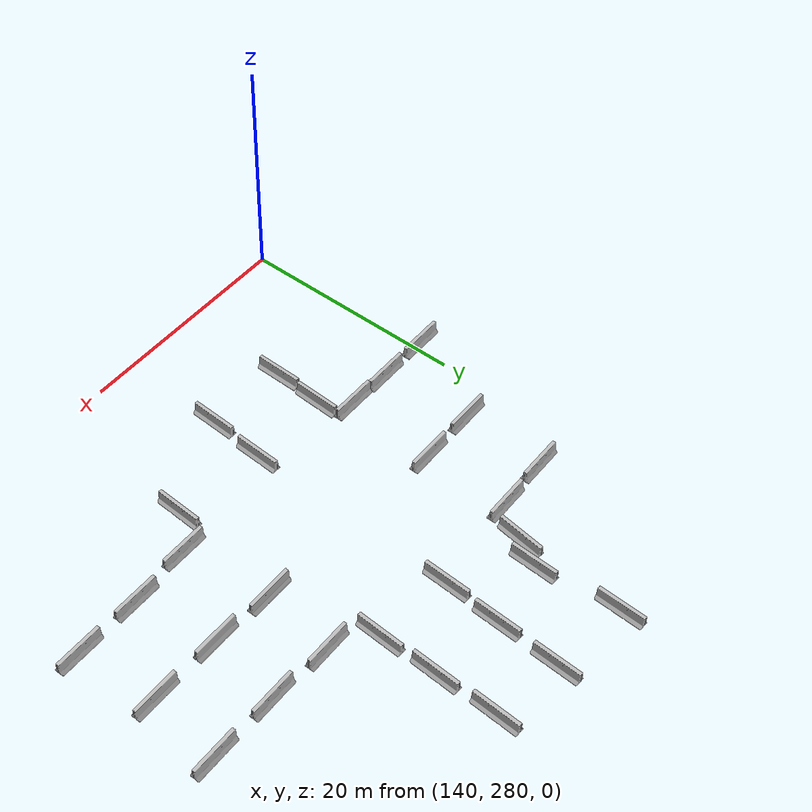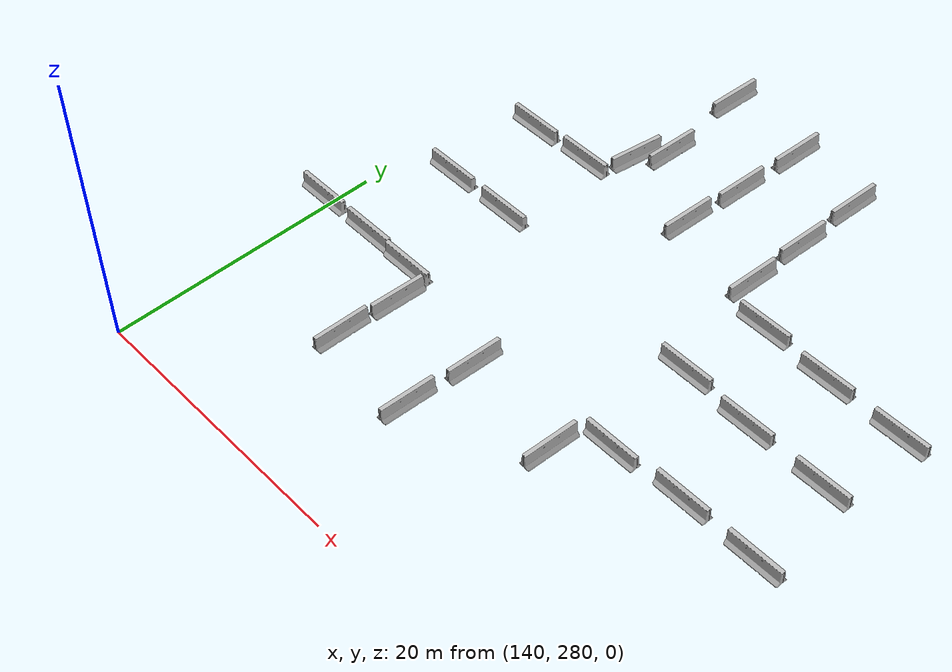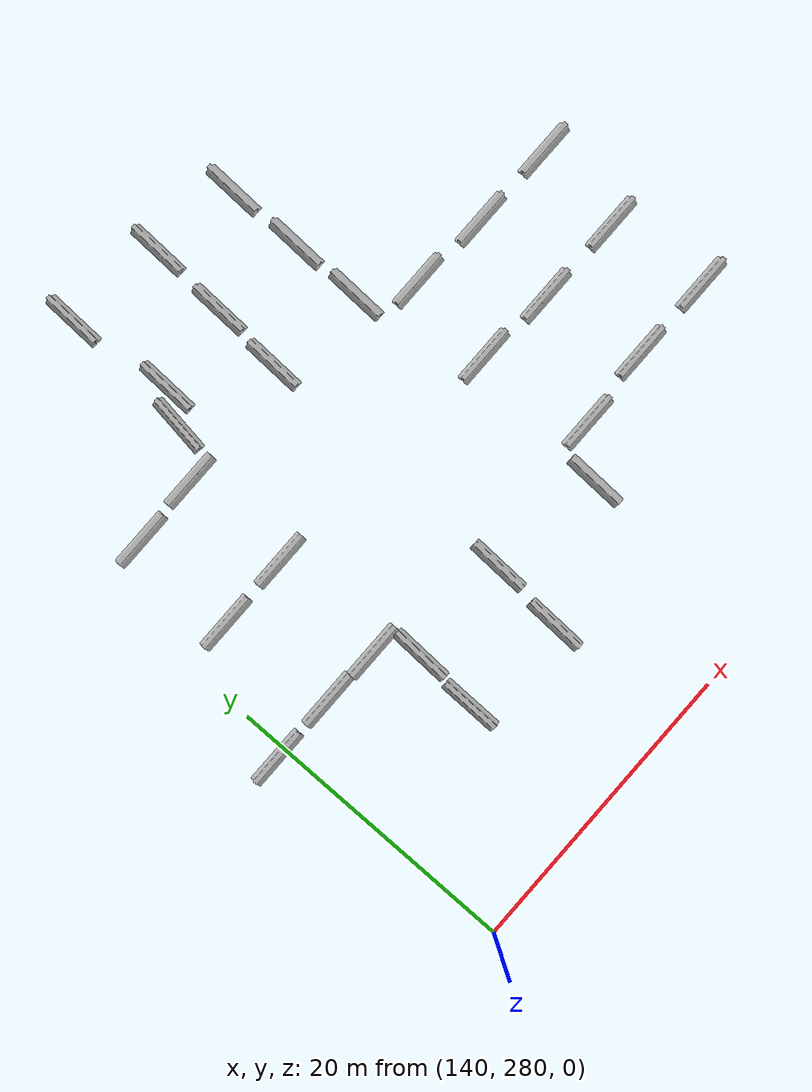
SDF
<sdf version="1.6">
 <world name="default">
  <model name="jersey_barrier_1">
   <static>1</static>
   <link name="link">
    <visual name="visual">
     <geometry><mesh><uri>model://jersey_barrier/meshes/jersey_barrier.dae</uri></mesh></geometry>
    </visual>
    <collision name="upright">
     <pose>0 0 0.5715 0 -0 0</pose>
     <geometry><box><size>4.06542 0.3063 1.143</size></box></geometry>
    </collision>
    <collision name="base">
     <pose>0 0 0.032258 0 -0 0</pose>
     <geometry><box><size>4.06542 0.8107 0.064516</size></box></geometry>
    </collision>
    <collision name="base2">
     <pose>0 0 0.1 0 -0 0</pose>
     <geometry><box><size>4.06542 0.65 0.1</size></box></geometry>
    </collision>
    <collision name="base3">
     <pose>0 0 0.2 0 -0 0</pose>
     <geometry><box><size>4.06542 0.5 0.1</size></box></geometry>
    </collision>
    <collision name="left-angle">
     <pose>0 -0.224 0.2401 0.9 -0 0</pose>
     <geometry><box><size>4.06542 0.5 0.064516</size></box></geometry>
    </collision>
    <collision name="right-angle">
     <pose>0 0.224 0.2401 -0.9 0 0</pose>
     <geometry><box><size>4.06542 0.5 0.064516</size></box></geometry>
    </collision>
   </link>
   <pose>143.504 304.734 0 0 -0 0</pose>
  </model>
  <model name="jersey_barrier_2">
   <static>1</static>
   <link name="link">
    <visual name="visual">
     <geometry><mesh><uri>model://jersey_barrier/meshes/jersey_barrier.dae</uri></mesh></geometry>
    </visual>
    <collision name="upright">
     <pose>0 0 0.5715 0 -0 0</pose>
     <geometry><box><size>4.06542 0.3063 1.143</size></box></geometry>
    </collision>
    <collision name="base">
     <pose>0 0 0.032258 0 -0 0</pose>
     <geometry><box><size>4.06542 0.8107 0.064516</size></box></geometry>
    </collision>
    <collision name="base2">
     <pose>0 0 0.1 0 -0 0</pose>
     <geometry><box><size>4.06542 0.65 0.1</size></box></geometry>
    </collision>
    <collision name="base3">
     <pose>0 0 0.2 0 -0 0</pose>
     <geometry><box><size>4.06542 0.5 0.1</size></box></geometry>
    </collision>
    <collision name="left-angle">
     <pose>0 -0.224 0.2401 0.9 -0 0</pose>
     <geometry><box><size>4.06542 0.5 0.064516</size></box></geometry>
    </collision>
    <collision name="right-angle">
     <pose>0 0.224 0.2401 -0.9 0 0</pose>
     <geometry><box><size>4.06542 0.5 0.064516</size></box></geometry>
    </collision>
   </link>
   <pose>148.52 304.738 0 0 -0 0</pose>
  </model>
  <model name="jersey_barrier_4">
   <static>1</static>
   <link name="link">
    <visual name="visual">
     <geometry><mesh><uri>model://jersey_barrier/meshes/jersey_barrier.dae</uri></mesh></geometry>
    </visual>
    <collision name="upright">
     <pose>0 0 0.5715 0 -0 0</pose>
     <geometry><box><size>4.06542 0.3063 1.143</size></box></geometry>
    </collision>
    <collision name="base">
     <pose>0 0 0.032258 0 -0 0</pose>
     <geometry><box><size>4.06542 0.8107 0.064516</size></box></geometry>
    </collision>
    <collision name="base2">
     <pose>0 0 0.1 0 -0 0</pose>
     <geometry><box><size>4.06542 0.65 0.1</size></box></geometry>
    </collision>
    <collision name="base3">
     <pose>0 0 0.2 0 -0 0</pose>
     <geometry><box><size>4.06542 0.5 0.1</size></box></geometry>
    </collision>
    <collision name="left-angle">
     <pose>0 -0.224 0.2401 0.9 -0 0</pose>
     <geometry><box><size>4.06542 0.5 0.064516</size></box></geometry>
    </collision>
    <collision name="right-angle">
     <pose>0 0.224 0.2401 -0.9 0 0</pose>
     <geometry><box><size>4.06542 0.5 0.064516</size></box></geometry>
    </collision>
   </link>
   <pose>143.918 311.998 0 0 -0 0</pose>
  </model>
  <model name="jersey_barrier_5">
   <static>1</static>
   <link name="link">
    <visual name="visual">
     <geometry><mesh><uri>model://jersey_barrier/meshes/jersey_barrier.dae</uri></mesh></geometry>
    </visual>
    <collision name="upright">
     <pose>0 0 0.5715 0 -0 0</pose>
     <geometry><box><size>4.06542 0.3063 1.143</size></box></geometry>
    </collision>
    <collision name="base">
     <pose>0 0 0.032258 0 -0 0</pose>
     <geometry><box><size>4.06542 0.8107 0.064516</size></box></geometry>
    </collision>
    <collision name="base2">
     <pose>0 0 0.1 0 -0 0</pose>
     <geometry><box><size>4.06542 0.65 0.1</size></box></geometry>
    </collision>
    <collision name="base3">
     <pose>0 0 0.2 0 -0 0</pose>
     <geometry><box><size>4.06542 0.5 0.1</size></box></geometry>
    </collision>
    <collision name="left-angle">
     <pose>0 -0.224 0.2401 0.9 -0 0</pose>
     <geometry><box><size>4.06542 0.5 0.064516</size></box></geometry>
    </collision>
    <collision name="right-angle">
     <pose>0 0.224 0.2401 -0.9 0 0</pose>
     <geometry><box><size>4.06542 0.5 0.064516</size></box></geometry>
    </collision>
   </link>
   <pose>148.594 312.14 0 0 -0 0</pose>
  </model>
  <model name="jersey_barrier_6">
   <static>1</static>
   <link name="link">
    <visual name="visual">
     <geometry><mesh><uri>model://jersey_barrier/meshes/jersey_barrier.dae</uri></mesh></geometry>
    </visual>
    <collision name="upright">
     <pose>0 0 0.5715 0 -0 0</pose>
     <geometry><box><size>4.06542 0.3063 1.143</size></box></geometry>
    </collision>
    <collision name="base">
     <pose>0 0 0.032258 0 -0 0</pose>
     <geometry><box><size>4.06542 0.8107 0.064516</size></box></geometry>
    </collision>
    <collision name="base2">
     <pose>0 0 0.1 0 -0 0</pose>
     <geometry><box><size>4.06542 0.65 0.1</size></box></geometry>
    </collision>
    <collision name="base3">
     <pose>0 0 0.2 0 -0 0</pose>
     <geometry><box><size>4.06542 0.5 0.1</size></box></geometry>
    </collision>
    <collision name="left-angle">
     <pose>0 -0.224 0.2401 0.9 -0 0</pose>
     <geometry><box><size>4.06542 0.5 0.064516</size></box></geometry>
    </collision>
    <collision name="right-angle">
     <pose>0 0.224 0.2401 -0.9 0 0</pose>
     <geometry><box><size>4.06542 0.5 0.064516</size></box></geometry>
    </collision>
   </link>
   <pose>149.525 290.159 -0.071408 0.030481 0.002228 -1.58569</pose>
  </model>
  <model name="jersey_barrier_8">
   <static>1</static>
   <link name="link">
    <visual name="visual">
     <geometry><mesh><uri>model://jersey_barrier/meshes/jersey_barrier.dae</uri></mesh></geometry>
    </visual>
    <collision name="upright">
     <pose>0 0 0.5715 0 -0 0</pose>
     <geometry><box><size>4.06542 0.3063 1.143</size></box></geometry>
    </collision>
    <collision name="base">
     <pose>0 0 0.032258 0 -0 0</pose>
     <geometry><box><size>4.06542 0.8107 0.064516</size></box></geometry>
    </collision>
    <collision name="base2">
     <pose>0 0 0.1 0 -0 0</pose>
     <geometry><box><size>4.06542 0.65 0.1</size></box></geometry>
    </collision>
    <collision name="base3">
     <pose>0 0 0.2 0 -0 0</pose>
     <geometry><box><size>4.06542 0.5 0.1</size></box></geometry>
    </collision>
    <collision name="left-angle">
     <pose>0 -0.224 0.2401 0.9 -0 0</pose>
     <geometry><box><size>4.06542 0.5 0.064516</size></box></geometry>
    </collision>
    <collision name="right-angle">
     <pose>0 0.224 0.2401 -0.9 0 0</pose>
     <geometry><box><size>4.06542 0.5 0.064516</size></box></geometry>
    </collision>
   </link>
   <pose>149.831 294.439 0 0 0 -1.60883</pose>
  </model>
  <model name="jersey_barrier_8_clone">
   <static>1</static>
   <link name="link">
    <visual name="visual">
     <geometry><mesh><uri>model://jersey_barrier/meshes/jersey_barrier.dae</uri></mesh></geometry>
    </visual>
    <collision name="upright">
     <pose>0 0 0.5715 0 -0 0</pose>
     <geometry><box><size>4.06542 0.3063 1.143</size></box></geometry>
    </collision>
    <collision name="base">
     <pose>0 0 0.032258 0 -0 0</pose>
     <geometry><box><size>4.06542 0.8107 0.064516</size></box></geometry>
    </collision>
    <collision name="base2">
     <pose>0 0 0.1 0 -0 0</pose>
     <geometry><box><size>4.06542 0.65 0.1</size></box></geometry>
    </collision>
    <collision name="base3">
     <pose>0 0 0.2 0 -0 0</pose>
     <geometry><box><size>4.06542 0.5 0.1</size></box></geometry>
    </collision>
    <collision name="left-angle">
     <pose>0 -0.224 0.2401 0.9 -0 0</pose>
     <geometry><box><size>4.06542 0.5 0.064516</size></box></geometry>
    </collision>
    <collision name="right-angle">
     <pose>0 0.224 0.2401 -0.9 0 0</pose>
     <geometry><box><size>4.06542 0.5 0.064516</size></box></geometry>
    </collision>
   </link>
   <pose>156.627 289.473 0 0 0 -1.60883</pose>
  </model>
  <model name="jersey_barrier_2_clone">
   <static>1</static>
   <link name="link">
    <visual name="visual">
     <geometry><mesh><uri>model://jersey_barrier/meshes/jersey_barrier.dae</uri></mesh></geometry>
    </visual>
    <collision name="upright">
     <pose>0 0 0.5715 0 -0 0</pose>
     <geometry><box><size>4.06542 0.3063 1.143</size></box></geometry>
    </collision>
    <collision name="base">
     <pose>0 0 0.032258 0 -0 0</pose>
     <geometry><box><size>4.06542 0.8107 0.064516</size></box></geometry>
    </collision>
    <collision name="base2">
     <pose>0 0 0.1 0 -0 0</pose>
     <geometry><box><size>4.06542 0.65 0.1</size></box></geometry>
    </collision>
    <collision name="base3">
     <pose>0 0 0.2 0 -0 0</pose>
     <geometry><box><size>4.06542 0.5 0.1</size></box></geometry>
    </collision>
    <collision name="left-angle">
     <pose>0 -0.224 0.2401 0.9 -0 0</pose>
     <geometry><box><size>4.06542 0.5 0.064516</size></box></geometry>
    </collision>
    <collision name="right-angle">
     <pose>0 0.224 0.2401 -0.9 0 0</pose>
     <geometry><box><size>4.06542 0.5 0.064516</size></box></geometry>
    </collision>
   </link>
   <pose>148.074 296.777 0 0 -0 0</pose>
  </model>
  <model name="jersey_barrier_2_clone_0">
   <static>1</static>
   <link name="link">
    <visual name="visual">
     <geometry><mesh><uri>model://jersey_barrier/meshes/jersey_barrier.dae</uri></mesh></geometry>
    </visual>
    <collision name="upright">
     <pose>0 0 0.5715 0 -0 0</pose>
     <geometry><box><size>4.06542 0.3063 1.143</size></box></geometry>
    </collision>
    <collision name="base">
     <pose>0 0 0.032258 0 -0 0</pose>
     <geometry><box><size>4.06542 0.8107 0.064516</size></box></geometry>
    </collision>
    <collision name="base2">
     <pose>0 0 0.1 0 -0 0</pose>
     <geometry><box><size>4.06542 0.65 0.1</size></box></geometry>
    </collision>
    <collision name="base3">
     <pose>0 0 0.2 0 -0 0</pose>
     <geometry><box><size>4.06542 0.5 0.1</size></box></geometry>
    </collision>
    <collision name="left-angle">
     <pose>0 -0.224 0.2401 0.9 -0 0</pose>
     <geometry><box><size>4.06542 0.5 0.064516</size></box></geometry>
    </collision>
    <collision name="right-angle">
     <pose>0 0.224 0.2401 -0.9 0 0</pose>
     <geometry><box><size>4.06542 0.5 0.064516</size></box></geometry>
    </collision>
   </link>
   <pose>144.038 296.926 0 0 -0 0</pose>
  </model>
  <model name="jersey_barrier_2_clone_1">
   <static>1</static>
   <link name="link">
    <visual name="visual">
     <geometry><mesh><uri>model://jersey_barrier/meshes/jersey_barrier.dae</uri></mesh></geometry>
    </visual>
    <collision name="upright">
     <pose>0 0 0.5715 0 -0 0</pose>
     <geometry><box><size>4.06542 0.3063 1.143</size></box></geometry>
    </collision>
    <collision name="base">
     <pose>0 0 0.032258 0 -0 0</pose>
     <geometry><box><size>4.06542 0.8107 0.064516</size></box></geometry>
    </collision>
    <collision name="base2">
     <pose>0 0 0.1 0 -0 0</pose>
     <geometry><box><size>4.06542 0.65 0.1</size></box></geometry>
    </collision>
    <collision name="base3">
     <pose>0 0 0.2 0 -0 0</pose>
     <geometry><box><size>4.06542 0.5 0.1</size></box></geometry>
    </collision>
    <collision name="left-angle">
     <pose>0 -0.224 0.2401 0.9 -0 0</pose>
     <geometry><box><size>4.06542 0.5 0.064516</size></box></geometry>
    </collision>
    <collision name="right-angle">
     <pose>0 0.224 0.2401 -0.9 0 0</pose>
     <geometry><box><size>4.06542 0.5 0.064516</size></box></geometry>
    </collision>
   </link>
   <pose>139.373 296.956 0 0 -0 0</pose>
  </model>
  <model name="jersey_barrier_2_clone_2">
   <static>1</static>
   <link name="link">
    <visual name="visual">
     <geometry><mesh><uri>model://jersey_barrier/meshes/jersey_barrier.dae</uri></mesh></geometry>
    </visual>
    <collision name="upright">
     <pose>0 0 0.5715 0 -0 0</pose>
     <geometry><box><size>4.06542 0.3063 1.143</size></box></geometry>
    </collision>
    <collision name="base">
     <pose>0 0 0.032258 0 -0 0</pose>
     <geometry><box><size>4.06542 0.8107 0.064516</size></box></geometry>
    </collision>
    <collision name="base2">
     <pose>0 0 0.1 0 -0 0</pose>
     <geometry><box><size>4.06542 0.65 0.1</size></box></geometry>
    </collision>
    <collision name="base3">
     <pose>0 0 0.2 0 -0 0</pose>
     <geometry><box><size>4.06542 0.5 0.1</size></box></geometry>
    </collision>
    <collision name="left-angle">
     <pose>0 -0.224 0.2401 0.9 -0 0</pose>
     <geometry><box><size>4.06542 0.5 0.064516</size></box></geometry>
    </collision>
    <collision name="right-angle">
     <pose>0 0.224 0.2401 -0.9 0 0</pose>
     <geometry><box><size>4.06542 0.5 0.064516</size></box></geometry>
    </collision>
   </link>
   <pose>150.688 314.914 0 0 -0 1.43214</pose>
  </model>
  <model name="jersey_barrier_8_clone_clone">
   <static>1</static>
   <link name="link">
    <visual name="visual">
     <geometry><mesh><uri>model://jersey_barrier/meshes/jersey_barrier.dae</uri></mesh></geometry>
    </visual>
    <collision name="upright">
     <pose>0 0 0.5715 0 -0 0</pose>
     <geometry><box><size>4.06542 0.3063 1.143</size></box></geometry>
    </collision>
    <collision name="base">
     <pose>0 0 0.032258 0 -0 0</pose>
     <geometry><box><size>4.06542 0.8107 0.064516</size></box></geometry>
    </collision>
    <collision name="base2">
     <pose>0 0 0.1 0 -0 0</pose>
     <geometry><box><size>4.06542 0.65 0.1</size></box></geometry>
    </collision>
    <collision name="base3">
     <pose>0 0 0.2 0 -0 0</pose>
     <geometry><box><size>4.06542 0.5 0.1</size></box></geometry>
    </collision>
    <collision name="left-angle">
     <pose>0 -0.224 0.2401 0.9 -0 0</pose>
     <geometry><box><size>4.06542 0.5 0.064516</size></box></geometry>
    </collision>
    <collision name="right-angle">
     <pose>0 0.224 0.2401 -0.9 0 0</pose>
     <geometry><box><size>4.06542 0.5 0.064516</size></box></geometry>
    </collision>
   </link>
   <pose>152 317 0 0 0 -1.60883</pose>
  </model>
  <model name="jersey_barrier_8_clone_clone_0">
   <static>1</static>
   <link name="link">
    <visual name="visual">
     <geometry><mesh><uri>model://jersey_barrier/meshes/jersey_barrier.dae</uri></mesh></geometry>
    </visual>
    <collision name="upright">
     <pose>0 0 0.5715 0 -0 0</pose>
     <geometry><box><size>4.06542 0.3063 1.143</size></box></geometry>
    </collision>
    <collision name="base">
     <pose>0 0 0.032258 0 -0 0</pose>
     <geometry><box><size>4.06542 0.8107 0.064516</size></box></geometry>
    </collision>
    <collision name="base2">
     <pose>0 0 0.1 0 -0 0</pose>
     <geometry><box><size>4.06542 0.65 0.1</size></box></geometry>
    </collision>
    <collision name="base3">
     <pose>0 0 0.2 0 -0 0</pose>
     <geometry><box><size>4.06542 0.5 0.1</size></box></geometry>
    </collision>
    <collision name="left-angle">
     <pose>0 -0.224 0.2401 0.9 -0 0</pose>
     <geometry><box><size>4.06542 0.5 0.064516</size></box></geometry>
    </collision>
    <collision name="right-angle">
     <pose>0 0.224 0.2401 -0.9 0 0</pose>
     <geometry><box><size>4.06542 0.5 0.064516</size></box></geometry>
    </collision>
   </link>
   <pose>151.296 324.055 0 0 0 -1.60883</pose>
  </model>
  <model name="jersey_barrier_8_clone_clone_1">
   <static>1</static>
   <link name="link">
    <visual name="visual">
     <geometry><mesh><uri>model://jersey_barrier/meshes/jersey_barrier.dae</uri></mesh></geometry>
    </visual>
    <collision name="upright">
     <pose>0 0 0.5715 0 -0 0</pose>
     <geometry><box><size>4.06542 0.3063 1.143</size></box></geometry>
    </collision>
    <collision name="base">
     <pose>0 0 0.032258 0 -0 0</pose>
     <geometry><box><size>4.06542 0.8107 0.064516</size></box></geometry>
    </collision>
    <collision name="base2">
     <pose>0 0 0.1 0 -0 0</pose>
     <geometry><box><size>4.06542 0.65 0.1</size></box></geometry>
    </collision>
    <collision name="base3">
     <pose>0 0 0.2 0 -0 0</pose>
     <geometry><box><size>4.06542 0.5 0.1</size></box></geometry>
    </collision>
    <collision name="left-angle">
     <pose>0 -0.224 0.2401 0.9 -0 0</pose>
     <geometry><box><size>4.06542 0.5 0.064516</size></box></geometry>
    </collision>
    <collision name="right-angle">
     <pose>0 0.224 0.2401 -0.9 0 0</pose>
     <geometry><box><size>4.06542 0.5 0.064516</size></box></geometry>
    </collision>
   </link>
   <pose>157.339 312.978 0 0 0 -1.60883</pose>
  </model>
  <model name="jersey_barrier_8_clone_clone_2">
   <static>1</static>
   <link name="link">
    <visual name="visual">
     <geometry><mesh><uri>model://jersey_barrier/meshes/jersey_barrier.dae</uri></mesh></geometry>
    </visual>
    <collision name="upright">
     <pose>0 0 0.5715 0 -0 0</pose>
     <geometry><box><size>4.06542 0.3063 1.143</size></box></geometry>
    </collision>
    <collision name="base">
     <pose>0 0 0.032258 0 -0 0</pose>
     <geometry><box><size>4.06542 0.8107 0.064516</size></box></geometry>
    </collision>
    <collision name="base2">
     <pose>0 0 0.1 0 -0 0</pose>
     <geometry><box><size>4.06542 0.65 0.1</size></box></geometry>
    </collision>
    <collision name="base3">
     <pose>0 0 0.2 0 -0 0</pose>
     <geometry><box><size>4.06542 0.5 0.1</size></box></geometry>
    </collision>
    <collision name="left-angle">
     <pose>0 -0.224 0.2401 0.9 -0 0</pose>
     <geometry><box><size>4.06542 0.5 0.064516</size></box></geometry>
    </collision>
    <collision name="right-angle">
     <pose>0 0.224 0.2401 -0.9 0 0</pose>
     <geometry><box><size>4.06542 0.5 0.064516</size></box></geometry>
    </collision>
   </link>
   <pose>157.718 317.742 0 0 0 -1.60883</pose>
  </model>
  <model name="jersey_barrier_8_clone_clone_3">
   <static>1</static>
   <link name="link">
    <visual name="visual">
     <geometry><mesh><uri>model://jersey_barrier/meshes/jersey_barrier.dae</uri></mesh></geometry>
    </visual>
    <collision name="upright">
     <pose>0 0 0.5715 0 -0 0</pose>
     <geometry><box><size>4.06542 0.3063 1.143</size></box></geometry>
    </collision>
    <collision name="base">
     <pose>0 0 0.032258 0 -0 0</pose>
     <geometry><box><size>4.06542 0.8107 0.064516</size></box></geometry>
    </collision>
    <collision name="base2">
     <pose>0 0 0.1 0 -0 0</pose>
     <geometry><box><size>4.06542 0.65 0.1</size></box></geometry>
    </collision>
    <collision name="base3">
     <pose>0 0 0.2 0 -0 0</pose>
     <geometry><box><size>4.06542 0.5 0.1</size></box></geometry>
    </collision>
    <collision name="left-angle">
     <pose>0 -0.224 0.2401 0.9 -0 0</pose>
     <geometry><box><size>4.06542 0.5 0.064516</size></box></geometry>
    </collision>
    <collision name="right-angle">
     <pose>0 0.224 0.2401 -0.9 0 0</pose>
     <geometry><box><size>4.06542 0.5 0.064516</size></box></geometry>
    </collision>
   </link>
   <pose>158 323 0 0 0 -1.60883</pose>
  </model>
  <model name="jersey_barrier_8_clone_clone_4">
   <static>1</static>
   <link name="link">
    <visual name="visual">
     <geometry><mesh><uri>model://jersey_barrier/meshes/jersey_barrier.dae</uri></mesh></geometry>
    </visual>
    <collision name="upright">
     <pose>0 0 0.5715 0 -0 0</pose>
     <geometry><box><size>4.06542 0.3063 1.143</size></box></geometry>
    </collision>
    <collision name="base">
     <pose>0 0 0.032258 0 -0 0</pose>
     <geometry><box><size>4.06542 0.8107 0.064516</size></box></geometry>
    </collision>
    <collision name="base2">
     <pose>0 0 0.1 0 -0 0</pose>
     <geometry><box><size>4.06542 0.65 0.1</size></box></geometry>
    </collision>
    <collision name="base3">
     <pose>0 0 0.2 0 -0 0</pose>
     <geometry><box><size>4.06542 0.5 0.1</size></box></geometry>
    </collision>
    <collision name="left-angle">
     <pose>0 -0.224 0.2401 0.9 -0 0</pose>
     <geometry><box><size>4.06542 0.5 0.064516</size></box></geometry>
    </collision>
    <collision name="right-angle">
     <pose>0 0.224 0.2401 -0.9 0 0</pose>
     <geometry><box><size>4.06542 0.5 0.064516</size></box></geometry>
    </collision>
   </link>
   <pose>163.85 321.948 0 0 0 -1.60883</pose>
  </model>
  <model name="jersey_barrier_8_clone_clone_5">
   <static>1</static>
   <link name="link">
    <visual name="visual">
     <geometry><mesh><uri>model://jersey_barrier/meshes/jersey_barrier.dae</uri></mesh></geometry>
    </visual>
    <collision name="upright">
     <pose>0 0 0.5715 0 -0 0</pose>
     <geometry><box><size>4.06542 0.3063 1.143</size></box></geometry>
    </collision>
    <collision name="base">
     <pose>0 0 0.032258 0 -0 0</pose>
     <geometry><box><size>4.06542 0.8107 0.064516</size></box></geometry>
    </collision>
    <collision name="base2">
     <pose>0 0 0.1 0 -0 0</pose>
     <geometry><box><size>4.06542 0.65 0.1</size></box></geometry>
    </collision>
    <collision name="base3">
     <pose>0 0 0.2 0 -0 0</pose>
     <geometry><box><size>4.06542 0.5 0.1</size></box></geometry>
    </collision>
    <collision name="left-angle">
     <pose>0 -0.224 0.2401 0.9 -0 0</pose>
     <geometry><box><size>4.06542 0.5 0.064516</size></box></geometry>
    </collision>
    <collision name="right-angle">
     <pose>0 0.224 0.2401 -0.9 0 0</pose>
     <geometry><box><size>4.06542 0.5 0.064516</size></box></geometry>
    </collision>
   </link>
   <pose>163.899 316.837 0 0 0 -1.60883</pose>
  </model>
  <model name="jersey_barrier_8_clone_clone_6">
   <static>1</static>
   <link name="link">
    <visual name="visual">
     <geometry><mesh><uri>model://jersey_barrier/meshes/jersey_barrier.dae</uri></mesh></geometry>
    </visual>
    <collision name="upright">
     <pose>0 0 0.5715 0 -0 0</pose>
     <geometry><box><size>4.06542 0.3063 1.143</size></box></geometry>
    </collision>
    <collision name="base">
     <pose>0 0 0.032258 0 -0 0</pose>
     <geometry><box><size>4.06542 0.8107 0.064516</size></box></geometry>
    </collision>
    <collision name="base2">
     <pose>0 0 0.1 0 -0 0</pose>
     <geometry><box><size>4.06542 0.65 0.1</size></box></geometry>
    </collision>
    <collision name="base3">
     <pose>0 0 0.2 0 -0 0</pose>
     <geometry><box><size>4.06542 0.5 0.1</size></box></geometry>
    </collision>
    <collision name="left-angle">
     <pose>0 -0.224 0.2401 0.9 -0 0</pose>
     <geometry><box><size>4.06542 0.5 0.064516</size></box></geometry>
    </collision>
    <collision name="right-angle">
     <pose>0 0.224 0.2401 -0.9 0 0</pose>
     <geometry><box><size>4.06542 0.5 0.064516</size></box></geometry>
    </collision>
   </link>
   <pose>163.941 311.979 0 0 0 -1.60883</pose>
  </model>
  <model name="jersey_barrier_8_clone_clone_7">
   <static>1</static>
   <link name="link">
    <visual name="visual">
     <geometry><mesh><uri>model://jersey_barrier/meshes/jersey_barrier.dae</uri></mesh></geometry>
    </visual>
    <collision name="upright">
     <pose>0 0 0.5715 0 -0 0</pose>
     <geometry><box><size>4.06542 0.3063 1.143</size></box></geometry>
    </collision>
    <collision name="base">
     <pose>0 0 0.032258 0 -0 0</pose>
     <geometry><box><size>4.06542 0.8107 0.064516</size></box></geometry>
    </collision>
    <collision name="base2">
     <pose>0 0 0.1 0 -0 0</pose>
     <geometry><box><size>4.06542 0.65 0.1</size></box></geometry>
    </collision>
    <collision name="base3">
     <pose>0 0 0.2 0 -0 0</pose>
     <geometry><box><size>4.06542 0.5 0.1</size></box></geometry>
    </collision>
    <collision name="left-angle">
     <pose>0 -0.224 0.2401 0.9 -0 0</pose>
     <geometry><box><size>4.06542 0.5 0.064516</size></box></geometry>
    </collision>
    <collision name="right-angle">
     <pose>0 0.224 0.2401 -0.9 0 0</pose>
     <geometry><box><size>4.06542 0.5 0.064516</size></box></geometry>
    </collision>
   </link>
   <pose>157.064 294.426 0 0 0 -1.60883</pose>
  </model>
  <model name="jersey_barrier_8_clone_clone_9">
   <static>1</static>
   <link name="link">
    <visual name="visual">
     <geometry><mesh><uri>model://jersey_barrier/meshes/jersey_barrier.dae</uri></mesh></geometry>
    </visual>
    <collision name="upright">
     <pose>0 0 0.5715 0 -0 0</pose>
     <geometry><box><size>4.06542 0.3063 1.143</size></box></geometry>
    </collision>
    <collision name="base">
     <pose>0 0 0.032258 0 -0 0</pose>
     <geometry><box><size>4.06542 0.8107 0.064516</size></box></geometry>
    </collision>
    <collision name="base2">
     <pose>0 0 0.1 0 -0 0</pose>
     <geometry><box><size>4.06542 0.65 0.1</size></box></geometry>
    </collision>
    <collision name="base3">
     <pose>0 0 0.2 0 -0 0</pose>
     <geometry><box><size>4.06542 0.5 0.1</size></box></geometry>
    </collision>
    <collision name="left-angle">
     <pose>0 -0.224 0.2401 0.9 -0 0</pose>
     <geometry><box><size>4.06542 0.5 0.064516</size></box></geometry>
    </collision>
    <collision name="right-angle">
     <pose>0 0.224 0.2401 -0.9 0 0</pose>
     <geometry><box><size>4.06542 0.5 0.064516</size></box></geometry>
    </collision>
   </link>
   <pose>164.905 293.372 0 0 0 -1.60883</pose>
  </model>
  <model name="jersey_barrier_2_clone_3">
   <static>1</static>
   <link name="link">
    <visual name="visual">
     <geometry><mesh><uri>model://jersey_barrier/meshes/jersey_barrier.dae</uri></mesh></geometry>
    </visual>
    <collision name="upright">
     <pose>0 0 0.5715 0 -0 0</pose>
     <geometry><box><size>4.06542 0.3063 1.143</size></box></geometry>
    </collision>
    <collision name="base">
     <pose>0 0 0.032258 0 -0 0</pose>
     <geometry><box><size>4.06542 0.8107 0.064516</size></box></geometry>
    </collision>
    <collision name="base2">
     <pose>0 0 0.1 0 -0 0</pose>
     <geometry><box><size>4.06542 0.65 0.1</size></box></geometry>
    </collision>
    <collision name="base3">
     <pose>0 0 0.2 0 -0 0</pose>
     <geometry><box><size>4.06542 0.5 0.1</size></box></geometry>
    </collision>
    <collision name="left-angle">
     <pose>0 -0.224 0.2401 0.9 -0 0</pose>
     <geometry><box><size>4.06542 0.5 0.064516</size></box></geometry>
    </collision>
    <collision name="right-angle">
     <pose>0 0.224 0.2401 -0.9 0 0</pose>
     <geometry><box><size>4.06542 0.5 0.064516</size></box></geometry>
    </collision>
   </link>
   <pose>167.097 309.688 0 0 -0 0</pose>
  </model>
  <model name="jersey_barrier_2_clone_4">
   <static>1</static>
   <link name="link">
    <visual name="visual">
     <geometry><mesh><uri>model://jersey_barrier/meshes/jersey_barrier.dae</uri></mesh></geometry>
    </visual>
    <collision name="upright">
     <pose>0 0 0.5715 0 -0 0</pose>
     <geometry><box><size>4.06542 0.3063 1.143</size></box></geometry>
    </collision>
    <collision name="base">
     <pose>0 0 0.032258 0 -0 0</pose>
     <geometry><box><size>4.06542 0.8107 0.064516</size></box></geometry>
    </collision>
    <collision name="base2">
     <pose>0 0 0.1 0 -0 0</pose>
     <geometry><box><size>4.06542 0.65 0.1</size></box></geometry>
    </collision>
    <collision name="base3">
     <pose>0 0 0.2 0 -0 0</pose>
     <geometry><box><size>4.06542 0.5 0.1</size></box></geometry>
    </collision>
    <collision name="left-angle">
     <pose>0 -0.224 0.2401 0.9 -0 0</pose>
     <geometry><box><size>4.06542 0.5 0.064516</size></box></geometry>
    </collision>
    <collision name="right-angle">
     <pose>0 0.224 0.2401 -0.9 0 0</pose>
     <geometry><box><size>4.06542 0.5 0.064516</size></box></geometry>
    </collision>
   </link>
   <pose>172.511 309.266 0 0 -0 0</pose>
  </model>
  <model name="jersey_barrier_2_clone_5">
   <static>1</static>
   <link name="link">
    <visual name="visual">
     <geometry><mesh><uri>model://jersey_barrier/meshes/jersey_barrier.dae</uri></mesh></geometry>
    </visual>
    <collision name="upright">
     <pose>0 0 0.5715 0 -0 0</pose>
     <geometry><box><size>4.06542 0.3063 1.143</size></box></geometry>
    </collision>
    <collision name="base">
     <pose>0 0 0.032258 0 -0 0</pose>
     <geometry><box><size>4.06542 0.8107 0.064516</size></box></geometry>
    </collision>
    <collision name="base2">
     <pose>0 0 0.1 0 -0 0</pose>
     <geometry><box><size>4.06542 0.65 0.1</size></box></geometry>
    </collision>
    <collision name="base3">
     <pose>0 0 0.2 0 -0 0</pose>
     <geometry><box><size>4.06542 0.5 0.1</size></box></geometry>
    </collision>
    <collision name="left-angle">
     <pose>0 -0.224 0.2401 0.9 -0 0</pose>
     <geometry><box><size>4.06542 0.5 0.064516</size></box></geometry>
    </collision>
    <collision name="right-angle">
     <pose>0 0.224 0.2401 -0.9 0 0</pose>
     <geometry><box><size>4.06542 0.5 0.064516</size></box></geometry>
    </collision>
   </link>
   <pose>178.302 309.133 0 0 -0 0</pose>
  </model>
  <model name="jersey_barrier_2_clone_6">
   <static>1</static>
   <link name="link">
    <visual name="visual">
     <geometry><mesh><uri>model://jersey_barrier/meshes/jersey_barrier.dae</uri></mesh></geometry>
    </visual>
    <collision name="upright">
     <pose>0 0 0.5715 0 -0 0</pose>
     <geometry><box><size>4.06542 0.3063 1.143</size></box></geometry>
    </collision>
    <collision name="base">
     <pose>0 0 0.032258 0 -0 0</pose>
     <geometry><box><size>4.06542 0.8107 0.064516</size></box></geometry>
    </collision>
    <collision name="base2">
     <pose>0 0 0.1 0 -0 0</pose>
     <geometry><box><size>4.06542 0.65 0.1</size></box></geometry>
    </collision>
    <collision name="base3">
     <pose>0 0 0.2 0 -0 0</pose>
     <geometry><box><size>4.06542 0.5 0.1</size></box></geometry>
    </collision>
    <collision name="left-angle">
     <pose>0 -0.224 0.2401 0.9 -0 0</pose>
     <geometry><box><size>4.06542 0.5 0.064516</size></box></geometry>
    </collision>
    <collision name="right-angle">
     <pose>0 0.224 0.2401 -0.9 0 0</pose>
     <geometry><box><size>4.06542 0.5 0.064516</size></box></geometry>
    </collision>
   </link>
   <pose>166.242 303.556 0 0 -0 0</pose>
  </model>
  <model name="jersey_barrier_2_clone_7">
   <static>1</static>
   <link name="link">
    <visual name="visual">
     <geometry><mesh><uri>model://jersey_barrier/meshes/jersey_barrier.dae</uri></mesh></geometry>
    </visual>
    <collision name="upright">
     <pose>0 0 0.5715 0 -0 0</pose>
     <geometry><box><size>4.06542 0.3063 1.143</size></box></geometry>
    </collision>
    <collision name="base">
     <pose>0 0 0.032258 0 -0 0</pose>
     <geometry><box><size>4.06542 0.8107 0.064516</size></box></geometry>
    </collision>
    <collision name="base2">
     <pose>0 0 0.1 0 -0 0</pose>
     <geometry><box><size>4.06542 0.65 0.1</size></box></geometry>
    </collision>
    <collision name="base3">
     <pose>0 0 0.2 0 -0 0</pose>
     <geometry><box><size>4.06542 0.5 0.1</size></box></geometry>
    </collision>
    <collision name="left-angle">
     <pose>0 -0.224 0.2401 0.9 -0 0</pose>
     <geometry><box><size>4.06542 0.5 0.064516</size></box></geometry>
    </collision>
    <collision name="right-angle">
     <pose>0 0.224 0.2401 -0.9 0 0</pose>
     <geometry><box><size>4.06542 0.5 0.064516</size></box></geometry>
    </collision>
   </link>
   <pose>171.565 303.133 0 0 -0 0</pose>
  </model>
  <model name="jersey_barrier_2_clone_8">
   <static>1</static>
   <link name="link">
    <visual name="visual">
     <geometry><mesh><uri>model://jersey_barrier/meshes/jersey_barrier.dae</uri></mesh></geometry>
    </visual>
    <collision name="upright">
     <pose>0 0 0.5715 0 -0 0</pose>
     <geometry><box><size>4.06542 0.3063 1.143</size></box></geometry>
    </collision>
    <collision name="base">
     <pose>0 0 0.032258 0 -0 0</pose>
     <geometry><box><size>4.06542 0.8107 0.064516</size></box></geometry>
    </collision>
    <collision name="base2">
     <pose>0 0 0.1 0 -0 0</pose>
     <geometry><box><size>4.06542 0.65 0.1</size></box></geometry>
    </collision>
    <collision name="base3">
     <pose>0 0 0.2 0 -0 0</pose>
     <geometry><box><size>4.06542 0.5 0.1</size></box></geometry>
    </collision>
    <collision name="left-angle">
     <pose>0 -0.224 0.2401 0.9 -0 0</pose>
     <geometry><box><size>4.06542 0.5 0.064516</size></box></geometry>
    </collision>
    <collision name="right-angle">
     <pose>0 0.224 0.2401 -0.9 0 0</pose>
     <geometry><box><size>4.06542 0.5 0.064516</size></box></geometry>
    </collision>
   </link>
   <pose>177.566 303 0 0 -0 0</pose>
  </model>
  <model name="jersey_barrier_2_clone_9">
   <static>1</static>
   <link name="link">
    <visual name="visual">
     <geometry><mesh><uri>model://jersey_barrier/meshes/jersey_barrier.dae</uri></mesh></geometry>
    </visual>
    <collision name="upright">
     <pose>0 0 0.5715 0 -0 0</pose>
     <geometry><box><size>4.06542 0.3063 1.143</size></box></geometry>
    </collision>
    <collision name="base">
     <pose>0 0 0.032258 0 -0 0</pose>
     <geometry><box><size>4.06542 0.8107 0.064516</size></box></geometry>
    </collision>
    <collision name="base2">
     <pose>0 0 0.1 0 -0 0</pose>
     <geometry><box><size>4.06542 0.65 0.1</size></box></geometry>
    </collision>
    <collision name="base3">
     <pose>0 0 0.2 0 -0 0</pose>
     <geometry><box><size>4.06542 0.5 0.1</size></box></geometry>
    </collision>
    <collision name="left-angle">
     <pose>0 -0.224 0.2401 0.9 -0 0</pose>
     <geometry><box><size>4.06542 0.5 0.064516</size></box></geometry>
    </collision>
    <collision name="right-angle">
     <pose>0 0.224 0.2401 -0.9 0 0</pose>
     <geometry><box><size>4.06542 0.5 0.064516</size></box></geometry>
    </collision>
   </link>
   <pose>167.34 296.069 0 0 -0 0</pose>
  </model>
  <model name="jersey_barrier_2_clone_10">
   <static>1</static>
   <link name="link">
    <visual name="visual">
     <geometry><mesh><uri>model://jersey_barrier/meshes/jersey_barrier.dae</uri></mesh></geometry>
    </visual>
    <collision name="upright">
     <pose>0 0 0.5715 0 -0 0</pose>
     <geometry><box><size>4.06542 0.3063 1.143</size></box></geometry>
    </collision>
    <collision name="base">
     <pose>0 0 0.032258 0 -0 0</pose>
     <geometry><box><size>4.06542 0.8107 0.064516</size></box></geometry>
    </collision>
    <collision name="base2">
     <pose>0 0 0.1 0 -0 0</pose>
     <geometry><box><size>4.06542 0.65 0.1</size></box></geometry>
    </collision>
    <collision name="base3">
     <pose>0 0 0.2 0 -0 0</pose>
     <geometry><box><size>4.06542 0.5 0.1</size></box></geometry>
    </collision>
    <collision name="left-angle">
     <pose>0 -0.224 0.2401 0.9 -0 0</pose>
     <geometry><box><size>4.06542 0.5 0.064516</size></box></geometry>
    </collision>
    <collision name="right-angle">
     <pose>0 0.224 0.2401 -0.9 0 0</pose>
     <geometry><box><size>4.06542 0.5 0.064516</size></box></geometry>
    </collision>
   </link>
   <pose>172.73 296.423 0 0 -0 0</pose>
  </model>
  <model name="jersey_barrier_2_clone_11">
   <static>1</static>
   <link name="link">
    <visual name="visual">
     <geometry><mesh><uri>model://jersey_barrier/meshes/jersey_barrier.dae</uri></mesh></geometry>
    </visual>
    <collision name="upright">
     <pose>0 0 0.5715 0 -0 0</pose>
     <geometry><box><size>4.06542 0.3063 1.143</size></box></geometry>
    </collision>
    <collision name="base">
     <pose>0 0 0.032258 0 -0 0</pose>
     <geometry><box><size>4.06542 0.8107 0.064516</size></box></geometry>
    </collision>
    <collision name="base2">
     <pose>0 0 0.1 0 -0 0</pose>
     <geometry><box><size>4.06542 0.65 0.1</size></box></geometry>
    </collision>
    <collision name="base3">
     <pose>0 0 0.2 0 -0 0</pose>
     <geometry><box><size>4.06542 0.5 0.1</size></box></geometry>
    </collision>
    <collision name="left-angle">
     <pose>0 -0.224 0.2401 0.9 -0 0</pose>
     <geometry><box><size>4.06542 0.5 0.064516</size></box></geometry>
    </collision>
    <collision name="right-angle">
     <pose>0 0.224 0.2401 -0.9 0 0</pose>
     <geometry><box><size>4.06542 0.5 0.064516</size></box></geometry>
    </collision>
   </link>
   <pose>178.362 296.357 0 0 -0 0</pose>
  </model>
 </world>
</sdf>
